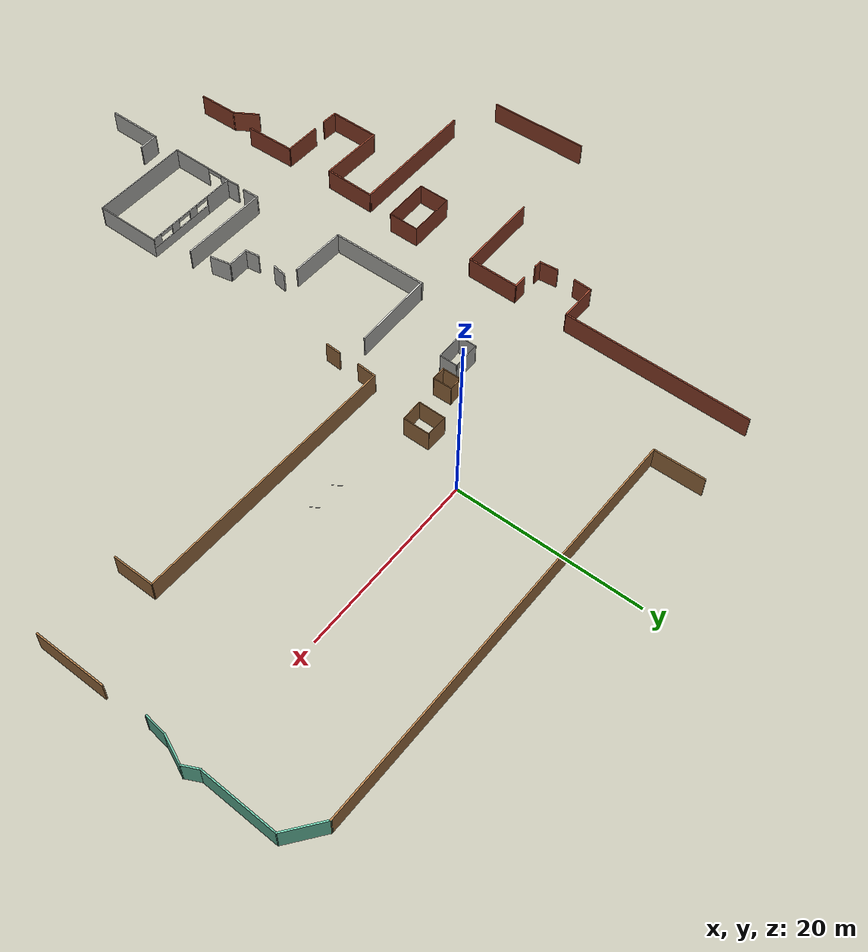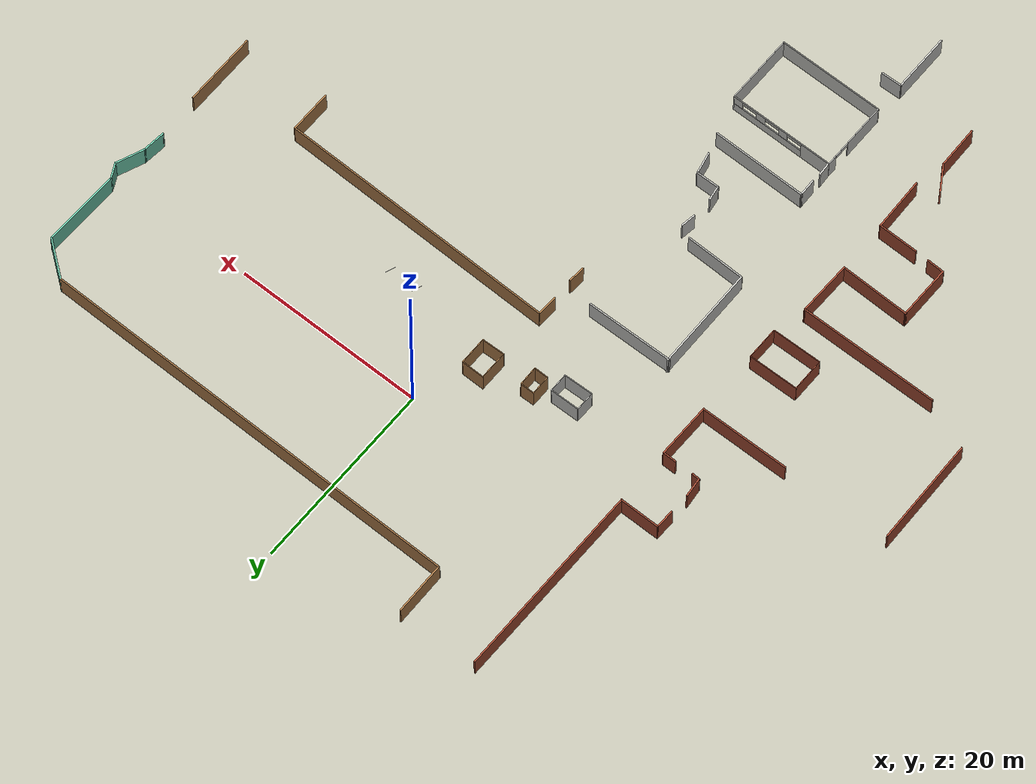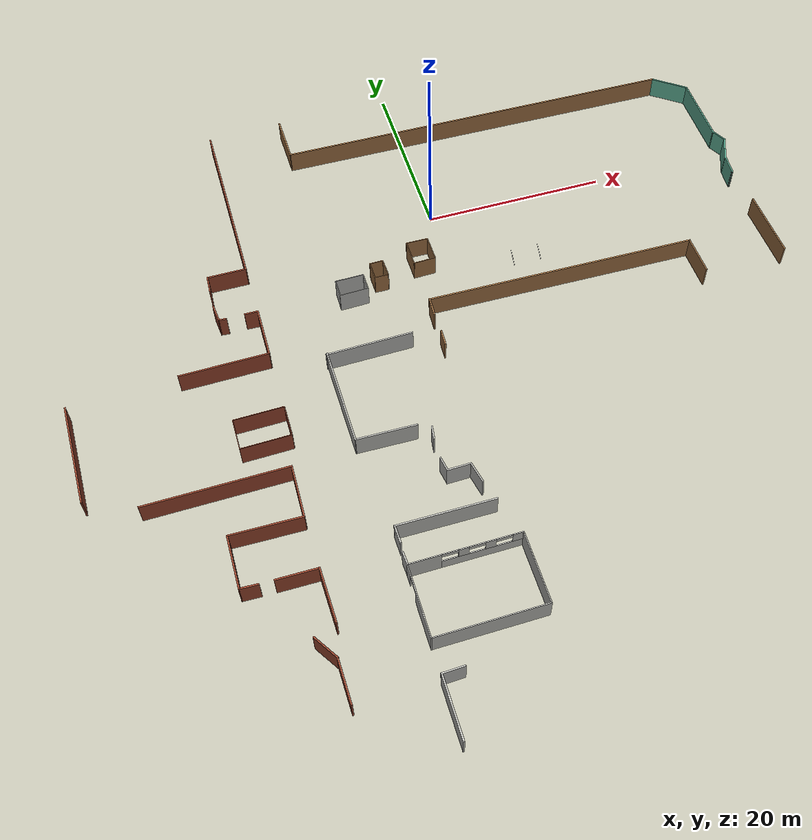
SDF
<sdf version="1.4">
 <world name="default">
  <model name="strut_0">
   <static>1</static>
   <pose>6.740 -8.623 0.536 -0.896 0.0 0.0</pose>
   <link name="link">
    <collision name="collision">
     <geometry><cylinder><length>1.76</length><radius>0.02</radius></cylinder></geometry>
    </collision>
    <visual name="visual">
     <geometry><cylinder><length>1.76</length><radius>0.02</radius></cylinder></geometry>
     <material>
      <script><uri>file://media/materials/scripts/gazebo.material</uri><name>Gazebo/Chrome</name></script>
      <shader type="vertex"><normal_map>__default__</normal_map></shader>
      <emissive>0.1 0.1 0.1 1</emissive>
      <specular>0.01 0.01 0.01 1</specular>
      <ambient>0.5 0.5 0.5 1</ambient>
      <diffuse>0.05 0.05 0.05 1</diffuse>
     </material>
    </visual>
   </link>
  </model>
  <model name="strut_1">
   <static>1</static>
   <pose>9.800 -8.623 0.536 -0.896 0.0 0.0</pose>
   <link name="link">
    <collision name="collision">
     <geometry><cylinder><length>1.76</length><radius>0.02</radius></cylinder></geometry>
    </collision>
    <visual name="visual">
     <geometry><cylinder><length>1.76</length><radius>0.02</radius></cylinder></geometry>
     <material>
      <script><uri>file://media/materials/scripts/gazebo.material</uri><name>Gazebo/Chrome</name></script>
      <shader type="vertex"><normal_map>__default__</normal_map></shader>
      <emissive>0.1 0.1 0.1 1</emissive>
      <specular>0.01 0.01 0.01 1</specular>
      <ambient>0.5 0.5 0.5 1</ambient>
      <diffuse>0.05 0.05 0.05 1</diffuse>
     </material>
    </visual>
   </link>
  </model>
  <model name="riseholme_enclosure_0">
   <static>1</static>
   <pose>-2.830 -19.680 0.0 0.0 0.0 0.056</pose>
   <link name="Wall_10">
    <collision name="Wall_10_Collision">
     <geometry><box><size>4.40408 0.15 2.5</size></box></geometry>
     <pose>0 0 1.25 0 -0 0</pose>
    </collision>
    <visual name="Wall_10_Visual">
     <geometry><box><size>4.40408 0.15 2.5</size></box></geometry>
     <meta><layer>0</layer></meta>
     <material>
      <script><uri>file://media/materials/scripts/gazebo.material</uri><name>Gazebo/Grey</name></script>
      <ambient>0.435294 0.796078 0.67451 1</ambient>
     </material>
     <pose>0 0 1.25 0 -0 0</pose>
    </visual>
    <pose>37.9809 28.2217 0 0 -0 -0.71569</pose>
   </link>
   <link name="Wall_100">
    <collision name="Wall_100_Collision">
     <geometry><box><size>1.38035 0.15 2.5</size></box></geometry>
     <pose>0 0 1.25 0 -0 0</pose>
    </collision>
    <visual name="Wall_100_Visual">
     <geometry><box><size>1.38035 0.15 2.5</size></box></geometry>
     <meta><layer>0</layer></meta>
     <material>
      <script><uri>file://media/materials/scripts/gazebo.material</uri><name>Gazebo/CeilingTiled</name></script>
      <ambient>1 1 1 1</ambient>
     </material>
     <pose>0 0 1.25 0 -0 0</pose>
    </visual>
    <pose>-13.3343 -20.6396 0 0 -0 -1.5708</pose>
   </link>
   <link name="Wall_102">
    <collision name="Wall_102_Collision">
     <geometry><box><size>5.25909 0.07 2.5</size></box></geometry>
     <pose>0 0 1.25 0 -0 0</pose>
    </collision>
    <visual name="Wall_102_Visual">
     <geometry><box><size>5.25909 0.07 2.5</size></box></geometry>
     <meta><layer>0</layer></meta>
     <material>
      <script><uri>file://media/materials/scripts/gazebo.material</uri><name>Gazebo/Bricks</name></script>
      <ambient>1 1 1 1</ambient>
     </material>
     <pose>0 0 1.25 0 -0 0</pose>
    </visual>
    <pose>-21.5336 -0.928753 0 0 -0 -0.039709</pose>
   </link>
   <link name="Wall_103">
    <collision name="Wall_103_Collision">
     <geometry><box><size>3.49121 0.07 2.5</size></box></geometry>
     <pose>0 0 1.25 0 -0 0</pose>
    </collision>
    <visual name="Wall_103_Visual">
     <geometry><box><size>3.49121 0.07 2.5</size></box></geometry>
     <meta><layer>0</layer></meta>
     <material>
      <script><uri>file://media/materials/scripts/gazebo.material</uri><name>Gazebo/Bricks</name></script>
      <ambient>1 1 1 1</ambient>
     </material>
     <pose>0 0 1.25 0 -0 0</pose>
    </visual>
    <pose>-19.0441 -2.73925 0 0 -0 -1.63105</pose>
   </link>
   <link name="Wall_104">
    <collision name="Wall_104_Collision">
     <geometry><box><size>5.24692 0.07 2.5</size></box></geometry>
     <pose>0 0 1.25 0 -0 0</pose>
    </collision>
    <visual name="Wall_104_Visual">
     <geometry><box><size>5.24692 0.07 2.5</size></box></geometry>
     <meta><layer>0</layer></meta>
     <material>
      <script><uri>file://media/materials/scripts/gazebo.material</uri><name>Gazebo/Bricks</name></script>
      <ambient>1 1 1 1</ambient>
     </material>
     <pose>0 0 1.25 0 -0 0</pose>
    </visual>
    <pose>-21.7333 -4.34992 0 0 -0 3.10417</pose>
   </link>
   <link name="Wall_105">
    <collision name="Wall_105_Collision">
     <geometry><box><size>3.49429 0.07 2.5</size></box></geometry>
     <pose>0 0 1.25 0 -0 0</pose>
    </collision>
    <visual name="Wall_105_Visual">
     <geometry><box><size>3.49429 0.07 2.5</size></box></geometry>
     <meta><layer>0</layer></meta>
     <material>
      <script><uri>file://media/materials/scripts/gazebo.material</uri><name>Gazebo/Bricks</name></script>
      <ambient>1 1 1 1</ambient>
     </material>
     <pose>0 0 1.25 0 -0 0</pose>
    </visual>
    <pose>-24.2229 -2.53786 0 0 -0 1.51436</pose>
   </link>
   <link name="Wall_11">
    <collision name="Wall_11_Collision">
     <geometry><box><size>8.22495 0.15 2.5</size></box></geometry>
     <pose>0 0 1.25 0 -0 0</pose>
    </collision>
    <visual name="Wall_11_Visual">
     <geometry><box><size>8.22495 0.15 2.5</size></box></geometry>
     <meta><layer>0</layer></meta>
     <material>
      <script><uri>file://media/materials/scripts/gazebo.material</uri><name>Gazebo/Grey</name></script>
      <ambient>0.435294 0.796078 0.67451 1</ambient>
     </material>
     <pose>0 0 1.25 0 -0 0</pose>
    </visual>
    <pose>39.2604 22.8017 0 0 -0 -1.6515</pose>
   </link>
   <link name="Wall_12">
    <collision name="Wall_12_Collision">
     <geometry><box><size>1.81774 0.15 2.5</size></box></geometry>
     <pose>0 0 1.25 0 -0 0</pose>
    </collision>
    <visual name="Wall_12_Visual">
     <geometry><box><size>1.81774 0.15 2.5</size></box></geometry>
     <meta><layer>0</layer></meta>
     <material>
      <script><uri>file://media/materials/scripts/gazebo.material</uri><name>Gazebo/Grey</name></script>
      <ambient>0.435294 0.796078 0.67451 1</ambient>
     </material>
     <pose>0 0 1.25 0 -0 0</pose>
    </visual>
    <pose>39.2604 18.0097 0 0 -0 -1.16969</pose>
   </link>
   <link name="Wall_13">
    <collision name="Wall_13_Collision">
     <geometry><box><size>3.14637 0.15 2.5</size></box></geometry>
     <pose>0 0 1.25 0 -0 0</pose>
    </collision>
    <visual name="Wall_13_Visual">
     <geometry><box><size>3.14637 0.15 2.5</size></box></geometry>
     <meta><layer>0</layer></meta>
     <material>
      <script><uri>file://media/materials/scripts/gazebo.material</uri><name>Gazebo/Grey</name></script>
      <ambient>0.435294 0.796078 0.67451 1</ambient>
     </material>
     <pose>0 0 1.25 0 -0 0</pose>
    </visual>
    <pose>38.9349 15.8932 0 0 -0 -2.02041</pose>
   </link>
   <link name="Wall_14">
    <collision name="Wall_14_Collision">
     <geometry><box><size>2.45986 0.15 2.5</size></box></geometry>
     <pose>0 0 1.25 0 -0 0</pose>
    </collision>
    <visual name="Wall_14_Visual">
     <geometry><box><size>2.45986 0.15 2.5</size></box></geometry>
     <meta><layer>0</layer></meta>
     <material>
      <script><uri>file://media/materials/scripts/gazebo.material</uri><name>Gazebo/Grey</name></script>
      <ambient>0.435294 0.796078 0.67451 1</ambient>
     </material>
     <pose>0 0 1.25 0 -0 0</pose>
    </visual>
    <pose>38.0974 13.4042 0 0 -0 -1.73296</pose>
   </link>
   <link name="Wall_15">
    <collision name="Wall_15_Collision">
     <geometry><box><size>0.16 0.15 2.5</size></box></geometry>
     <pose>0 0 1.25 0 -0 0</pose>
    </collision>
    <visual name="Wall_15_Visual">
     <geometry><box><size>0.16 0.15 2.5</size></box></geometry>
     <meta><layer>0</layer></meta>
     <material>
      <script><uri>file://media/materials/scripts/gazebo.material</uri><name>Gazebo/Grey</name></script>
      <ambient>1 1 1 1</ambient>
     </material>
     <pose>0 0 1.25 0 -0 0</pose>
    </visual>
    <pose>37.9161 12.2642 0 0 -0 -0.015821</pose>
   </link>
   <link name="Wall_17">
    <collision name="Wall_17_Collision">
     <geometry><box><size>7.7914 0.15 2.5</size></box></geometry>
     <pose>0 0 1.25 0 -0 0</pose>
    </collision>
    <visual name="Wall_17_Visual">
     <geometry><box><size>7.7914 0.15 2.5</size></box></geometry>
     <meta><layer>0</layer></meta>
     <material>
      <script><uri>file://media/materials/scripts/gazebo.material</uri><name>Gazebo/Wood</name></script>
      <ambient>1 1 1 1</ambient>
     </material>
     <pose>0 0 1.25 0 -0 0</pose>
    </visual>
    <pose>37.7484 3.75021 0 0 -0 -1.62562</pose>
   </link>
   <link name="Wall_19">
    <collision name="Wall_19_Collision">
     <geometry><box><size>4.48297 0.15 2.5</size></box></geometry>
     <pose>0 0 1.25 0 -0 0</pose>
    </collision>
    <visual name="Wall_19_Visual">
     <geometry><box><size>4.48297 0.15 2.5</size></box></geometry>
     <meta><layer>0</layer></meta>
     <material>
      <script><uri>file://media/materials/scripts/gazebo.material</uri><name>Gazebo/Wood</name></script>
      <ambient>1 1 1 1</ambient>
     </material>
     <pose>0 0 1.25 0 -0 0</pose>
    </visual>
    <pose>28.3339 2.41776 0 0 -0 1.51709</pose>
   </link>
   <link name="Wall_20">
    <collision name="Wall_20_Collision">
     <geometry><box><size>29.5845 0.15 2.5</size></box></geometry>
     <pose>0 0 1.25 0 -0 0</pose>
    </collision>
    <visual name="Wall_20_Visual">
     <geometry><box><size>29.5845 0.15 2.5</size></box></geometry>
     <meta><layer>0</layer></meta>
     <material>
      <script><uri>file://media/materials/scripts/gazebo.material</uri><name>Gazebo/Wood</name></script>
      <ambient>1 1 1 1</ambient>
     </material>
     <pose>0 0 1.25 0 -0 0</pose>
    </visual>
    <pose>13.7719 5.65117 0 0 -0 3.06882</pose>
   </link>
   <link name="Wall_21">
    <collision name="Wall_21_Collision">
     <geometry><box><size>2.21023 0.15 2.5</size></box></geometry>
     <pose>0 0 1.25 0 -0 0</pose>
    </collision>
    <visual name="Wall_21_Visual">
     <geometry><box><size>2.21023 0.15 2.5</size></box></geometry>
     <meta><layer>0</layer></meta>
     <material>
      <script><uri>file://media/materials/scripts/gazebo.material</uri><name>Gazebo/Wood</name></script>
      <ambient>1 1 1 1</ambient>
     </material>
     <pose>0 0 1.25 0 -0 0</pose>
    </visual>
    <pose>-1.02272 5.6977 0 0 -0 -1.68395</pose>
   </link>
   <link name="Wall_23">
    <collision name="Wall_23_Collision">
     <geometry><box><size>1.78894 0.15 2.5</size></box></geometry>
     <pose>0 0 1.25 0 -0 0</pose>
    </collision>
    <visual name="Wall_23_Visual">
     <geometry><box><size>1.78894 0.15 2.5</size></box></geometry>
     <meta><layer>0</layer></meta>
     <material>
      <script><uri>file://media/materials/scripts/gazebo.material</uri><name>Gazebo/Wood</name></script>
      <ambient>1 1 1 1</ambient>
     </material>
     <pose>0 0 1.25 0 -0 0</pose>
    </visual>
    <pose>-1.32513 1.53381 0 0 -0 -1.68459</pose>
   </link>
   <link name="Wall_25">
    <collision name="Wall_25_Collision">
     <geometry><box><size>9.22979 0.15 2.5</size></box></geometry>
     <pose>0 0 1.25 0 -0 0</pose>
    </collision>
    <visual name="Wall_25_Visual">
     <geometry><box><size>9.22979 0.15 2.5</size></box></geometry>
     <meta><layer>0</layer></meta>
     <material>
      <script><uri>file://media/materials/scripts/gazebo.material</uri><name>Gazebo/CeilingTiled</name></script>
      <ambient>1 1 1 1</ambient>
     </material>
     <pose>0 0 1.25 0 -0 0</pose>
    </visual>
    <pose>-8.65264 3.41803 0 0 -0 3.10059</pose>
   </link>
   <link name="Wall_28">
    <collision name="Wall_28_Collision">
     <geometry><box><size>20.7055 0.15 2.5</size></box></geometry>
     <pose>0 0 1.25 0 -0 0</pose>
    </collision>
    <visual name="Wall_28_Visual">
     <geometry><box><size>20.7055 0.15 2.5</size></box></geometry>
     <meta><layer>0</layer></meta>
     <material>
      <script><uri>file://media/materials/scripts/gazebo.material</uri><name>Gazebo/Bricks</name></script>
      <ambient>1 1 1 1</ambient>
     </material>
     <pose>0 0 1.25 0 -0 0</pose>
    </visual>
    <pose>-17.2596 27.7733 0 0 -0 -1.63194</pose>
   </link>
   <link name="Wall_29">
    <collision name="Wall_29_Collision">
     <geometry><box><size>4.29716 0.15 2.5</size></box></geometry>
     <pose>0 0 1.25 0 -0 0</pose>
    </collision>
    <visual name="Wall_29_Visual">
     <geometry><box><size>4.29716 0.15 2.5</size></box></geometry>
     <meta><layer>0</layer></meta>
     <material>
      <script><uri>file://media/materials/scripts/gazebo.material</uri><name>Gazebo/Bricks</name></script>
      <ambient>1 1 1 1</ambient>
     </material>
     <pose>0 0 1.25 0 -0 0</pose>
    </visual>
    <pose>-19.958 17.6311 0 0 -0 3.08547</pose>
   </link>
   <link name="Wall_30">
    <collision name="Wall_30_Collision">
     <geometry><box><size>2.06654 0.15 2.5</size></box></geometry>
     <pose>0 0 1.25 0 -0 0</pose>
    </collision>
    <visual name="Wall_30_Visual">
     <geometry><box><size>2.06654 0.15 2.5</size></box></geometry>
     <meta><layer>0</layer></meta>
     <material>
      <script><uri>file://media/materials/scripts/gazebo.material</uri><name>Gazebo/Bricks</name></script>
      <ambient>1 1 1 1</ambient>
     </material>
     <pose>0 0 1.25 0 -0 0</pose>
    </visual>
    <pose>-22.1213 16.7937 0 0 -0 -1.66805</pose>
   </link>
   <link name="Wall_32">
    <collision name="Wall_32_Collision">
     <geometry><box><size>2.10622 0.15 2.5</size></box></geometry>
     <pose>0 0 1.25 0 -0 0</pose>
    </collision>
    <visual name="Wall_32_Visual">
     <geometry><box><size>2.10622 0.15 2.5</size></box></geometry>
     <meta><layer>0</layer></meta>
     <material>
      <script><uri>file://media/materials/scripts/gazebo.material</uri><name>Gazebo/Bricks</name></script>
      <ambient>1 1 1 1</ambient>
     </material>
     <pose>0 0 1.25 0 -0 0</pose>
    </visual>
    <pose>-22.3539 12.7228 0 0 -0 -1.52321</pose>
   </link>
   <link name="Wall_33">
    <collision name="Wall_33_Collision">
     <geometry><box><size>0.900176 0.15 2.5</size></box></geometry>
     <pose>0 0 1.25 0 -0 0</pose>
    </collision>
    <visual name="Wall_33_Visual">
     <geometry><box><size>0.900176 0.15 2.5</size></box></geometry>
     <meta><layer>0</layer></meta>
     <material>
      <script><uri>file://media/materials/scripts/gazebo.material</uri><name>Gazebo/Bricks</name></script>
      <ambient>1 1 1 1</ambient>
     </material>
     <pose>0 0 1.25 0 -0 0</pose>
    </visual>
    <pose>-21.9352 11.6993 0 0 -0 -0.124355</pose>
   </link>
   <link name="Wall_35">
    <collision name="Wall_35_Collision">
     <geometry><box><size>1.5024 0.15 2.5</size></box></geometry>
     <pose>0 0 1.25 0 -0 0</pose>
    </collision>
    <visual name="Wall_35_Visual">
     <geometry><box><size>1.5024 0.15 2.5</size></box></geometry>
     <meta><layer>0</layer></meta>
     <material>
      <script><uri>file://media/materials/scripts/gazebo.material</uri><name>Gazebo/Bricks</name></script>
      <ambient>1 1 1 1</ambient>
     </material>
     <pose>0 0 1.25 0 -0 0</pose>
    </visual>
    <pose>-18.8879 11.5132 0 0 -0 -0.068856</pose>
   </link>
   <link name="Wall_36">
    <collision name="Wall_36_Collision">
     <geometry><box><size>5.83811 0.15 2.5</size></box></geometry>
     <pose>0 0 1.25 0 -0 0</pose>
    </collision>
    <visual name="Wall_36_Visual">
     <geometry><box><size>5.83811 0.15 2.5</size></box></geometry>
     <meta><layer>0</layer></meta>
     <material>
      <script><uri>file://media/materials/scripts/gazebo.material</uri><name>Gazebo/Bricks</name></script>
      <ambient>1 1 1 1</ambient>
     </material>
     <pose>0 0 1.25 0 -0 0</pose>
    </visual>
    <pose>-18.3994 8.6287 0 0 -0 -1.63628</pose>
   </link>
   <link name="Wall_44">
    <collision name="Wall_44_Collision">
     <geometry><box><size>1.5575 0.07 2.5</size></box></geometry>
     <pose>0 0 1.25 0 -0 0</pose>
    </collision>
    <visual name="Wall_44_Visual">
     <geometry><box><size>1.5575 0.07 2.5</size></box></geometry>
     <meta><layer>0</layer></meta>
     <material>
      <script><uri>file://media/materials/scripts/gazebo.material</uri><name>Gazebo/Wood</name></script>
      <ambient>1 1 1 1</ambient>
     </material>
     <pose>0 0 1.25 0 -0 0</pose>
    </visual>
    <pose>-4.6011 11.5102 0 0 -0 -0.068625</pose>
   </link>
   <link name="Wall_48">
    <collision name="Wall_48_Collision">
     <geometry><box><size>2.1141 0.07 2.5</size></box></geometry>
     <pose>0 0 1.25 0 -0 0</pose>
    </collision>
    <visual name="Wall_48_Visual">
     <geometry><box><size>2.1141 0.07 2.5</size></box></geometry>
     <meta><layer>0</layer></meta>
     <material>
      <script><uri>file://media/materials/scripts/gazebo.material</uri><name>Gazebo/Wood</name></script>
      <ambient>1 1 1 1</ambient>
     </material>
     <pose>0 0 1.25 0 -0 0</pose>
    </visual>
    <pose>-3.8286 12.4807 0 0 -0 1.54095</pose>
   </link>
   <link name="Wall_49">
    <collision name="Wall_49_Collision">
     <geometry><box><size>1.51805 0.07 2.5</size></box></geometry>
     <pose>0 0 1.25 0 -0 0</pose>
    </collision>
    <visual name="Wall_49_Visual">
     <geometry><box><size>1.51805 0.07 2.5</size></box></geometry>
     <meta><layer>0</layer></meta>
     <material>
      <script><uri>file://media/materials/scripts/gazebo.material</uri><name>Gazebo/Wood</name></script>
      <ambient>1 1 1 1</ambient>
     </material>
     <pose>0 0 1.25 0 -0 0</pose>
    </visual>
    <pose>-4.52166 13.5281 0 0 -0 3.10583</pose>
   </link>
   <link name="Wall_5">
    <collision name="Wall_5_Collision">
     <geometry><box><size>5.55178 0.15 2.5</size></box></geometry>
     <pose>0 0 1.25 0 -0 0</pose>
    </collision>
    <visual name="Wall_5_Visual">
     <geometry><box><size>5.55178 0.15 2.5</size></box></geometry>
     <meta><layer>0</layer></meta>
     <material>
      <script><uri>file://media/materials/scripts/gazebo.material</uri><name>Gazebo/Wood</name></script>
      <ambient>1 1 1 1</ambient>
     </material>
     <pose>0 0 1.25 0 -0 0</pose>
    </visual>
    <pose>-8.44986 35.2004 0 0 -0 -1.61387</pose>
   </link>
   <link name="Wall_56">
    <collision name="Wall_56_Collision">
     <geometry><box><size>3.10664 0.07 2.5</size></box></geometry>
     <pose>0 0 1.25 0 -0 0</pose>
    </collision>
    <visual name="Wall_56_Visual">
     <geometry><box><size>3.10664 0.07 2.5</size></box></geometry>
     <meta><layer>0</layer></meta>
     <material>
      <script><uri>file://media/materials/scripts/gazebo.material</uri><name>Gazebo/CeilingTiled</name></script>
      <ambient>1 1 1 1</ambient>
     </material>
     <pose>0 0 1.25 0 -0 0</pose>
    </visual>
    <pose>-7.90402 12.4344 0 0 -0 -0.042937</pose>
   </link>
   <link name="Wall_57">
    <collision name="Wall_57_Collision">
     <geometry><box><size>2.00785 0.07 2.5</size></box></geometry>
     <pose>0 0 1.25 0 -0 0</pose>
    </collision>
    <visual name="Wall_57_Visual">
     <geometry><box><size>2.00785 0.07 2.5</size></box></geometry>
     <meta><layer>0</layer></meta>
     <material>
      <script><uri>file://media/materials/scripts/gazebo.material</uri><name>Gazebo/CeilingTiled</name></script>
      <ambient>1 1 1 1</ambient>
     </material>
     <pose>0 0 1.25 0 -0 0</pose>
    </visual>
    <pose>-6.4376 11.4016 0 0 -0 -1.62294</pose>
   </link>
   <link name="Wall_58">
    <collision name="Wall_58_Collision">
     <geometry><box><size>3.12574 0.07 2.5</size></box></geometry>
     <pose>0 0 1.25 0 -0 0</pose>
    </collision>
    <visual name="Wall_58_Visual">
     <geometry><box><size>3.12574 0.07 2.5</size></box></geometry>
     <meta><layer>0</layer></meta>
     <material>
      <script><uri>file://media/materials/scripts/gazebo.material</uri><name>Gazebo/CeilingTiled</name></script>
      <ambient>1 1 1 1</ambient>
     </material>
     <pose>0 0 1.25 0 -0 0</pose>
    </visual>
    <pose>-8.0156 10.4711 0 0 -0 3.11541</pose>
   </link>
   <link name="Wall_59">
    <collision name="Wall_59_Collision">
     <geometry><box><size>2.06504 0.07 2.5</size></box></geometry>
     <pose>0 0 1.25 0 -0 0</pose>
    </collision>
    <visual name="Wall_59_Visual">
     <geometry><box><size>2.06504 0.07 2.5</size></box></geometry>
     <meta><layer>0</layer></meta>
     <material>
      <script><uri>file://media/materials/scripts/gazebo.material</uri><name>Gazebo/CeilingTiled</name></script>
      <ambient>1 1 1 1</ambient>
     </material>
     <pose>0 0 1.25 0 -0 0</pose>
    </visual>
    <pose>-9.48241 11.5097 0 0 -0 1.50992</pose>
   </link>
   <link name="Wall_6">
    <collision name="Wall_6_Collision">
     <geometry><box><size>45.1846 0.15 2.5</size></box></geometry>
     <pose>0 0 1.25 0 -0 0</pose>
    </collision>
    <visual name="Wall_6_Visual">
     <geometry><box><size>45.1846 0.15 2.5</size></box></geometry>
     <meta><layer>0</layer></meta>
     <material>
      <script><uri>file://media/materials/scripts/gazebo.material</uri><name>Gazebo/Wood</name></script>
      <ambient>1 1 1 1</ambient>
     </material>
     <pose>0 0 1.25 0 -0 0</pose>
    </visual>
    <pose>13.9049 31.0596 0 0 -0 -0.0641</pose>
   </link>
   <link name="Wall_61">
    <collision name="Wall_61_Collision">
     <geometry><box><size>2.44653 0.07 2.5</size></box></geometry>
     <pose>0 0 1.25 0 -0 0</pose>
    </collision>
    <visual name="Wall_61_Visual">
     <geometry><box><size>2.44653 0.07 2.5</size></box></geometry>
     <meta><layer>0</layer></meta>
     <material>
      <script><uri>file://media/materials/scripts/gazebo.material</uri><name>Gazebo/Wood</name></script>
      <ambient>1 1 1 1</ambient>
     </material>
     <pose>0 0 1.25 0 -0 0</pose>
    </visual>
    <pose>0.595403 14.8812 0 0 -0 -0.06822</pose>
   </link>
   <link name="Wall_62">
    <collision name="Wall_62_Collision">
     <geometry><box><size>2.9539 0.07 2.5</size></box></geometry>
     <pose>0 0 1.25 0 -0 0</pose>
    </collision>
    <visual name="Wall_62_Visual">
     <geometry><box><size>2.9539 0.07 2.5</size></box></geometry>
     <meta><layer>0</layer></meta>
     <material>
      <script><uri>file://media/materials/scripts/gazebo.material</uri><name>Gazebo/Wood</name></script>
      <ambient>1 1 1 1</ambient>
     </material>
     <pose>0 0 1.25 0 -0 0</pose>
    </visual>
    <pose>1.7059 13.3602 0 0 -0 -1.62283</pose>
   </link>
   <link name="Wall_63">
    <collision name="Wall_63_Collision">
     <geometry><box><size>2.45355 0.07 2.5</size></box></geometry>
     <pose>0 0 1.25 0 -0 0</pose>
    </collision>
    <visual name="Wall_63_Visual">
     <geometry><box><size>2.45355 0.07 2.5</size></box></geometry>
     <meta><layer>0</layer></meta>
     <material>
      <script><uri>file://media/materials/scripts/gazebo.material</uri><name>Gazebo/Wood</name></script>
      <ambient>1 1 1 1</ambient>
     </material>
     <pose>0 0 1.25 0 -0 0</pose>
    </visual>
    <pose>0.439403 11.9547 0 0 -0 3.11265</pose>
   </link>
   <link name="Wall_64">
    <collision name="Wall_64_Collision">
     <geometry><box><size>3.04759 0.07 2.5</size></box></geometry>
     <pose>0 0 1.25 0 -0 0</pose>
    </collision>
    <visual name="Wall_64_Visual">
     <geometry><box><size>3.04759 0.07 2.5</size></box></geometry>
     <meta><layer>0</layer></meta>
     <material>
      <script><uri>file://media/materials/scripts/gazebo.material</uri><name>Gazebo/Wood</name></script>
      <ambient>1 1 1 1</ambient>
     </material>
     <pose>0 0 1.25 0 -0 0</pose>
    </visual>
    <pose>-0.665097 13.4757 0 0 -0 1.51234</pose>
   </link>
   <link name="Wall_66">
    <collision name="Wall_66_Collision">
     <geometry><box><size>2.06517 0.07 2.5</size></box></geometry>
     <pose>0 0 1.25 0 -0 0</pose>
    </collision>
    <visual name="Wall_66_Visual">
     <geometry><box><size>2.06517 0.07 2.5</size></box></geometry>
     <meta><layer>0</layer></meta>
     <material>
      <script><uri>file://media/materials/scripts/gazebo.material</uri><name>Gazebo/Wood</name></script>
      <ambient>1 1 1 1</ambient>
     </material>
     <pose>0 0 1.25 0 -0 0</pose>
    </visual>
    <pose>-5.29416 12.5576 0 0 -0 1.52172</pose>
   </link>
   <link name="Wall_68">
    <collision name="Wall_68_Collision">
     <geometry><box><size>9.43343 0.15 2.5</size></box></geometry>
     <pose>0 0 1.25 0 -0 0</pose>
    </collision>
    <visual name="Wall_68_Visual">
     <geometry><box><size>9.43343 0.15 2.5</size></box></geometry>
     <meta><layer>0</layer></meta>
     <material>
      <script><uri>file://media/materials/scripts/gazebo.material</uri><name>Gazebo/Bricks</name></script>
      <ambient>1 1 1 1</ambient>
     </material>
     <pose>0 0 1.25 0 -0 0</pose>
    </visual>
    <pose>-23.2225 6.00059 0 0 -0 3.09637</pose>
   </link>
   <link name="Wall_70">
    <collision name="Wall_70_Collision">
     <geometry><box><size>11.2057 0.15 2.5</size></box></geometry>
     <pose>0 0 1.25 0 -0 0</pose>
    </collision>
    <visual name="Wall_70_Visual">
     <geometry><box><size>11.2057 0.15 2.5</size></box></geometry>
     <meta><layer>0</layer></meta>
     <material>
      <script><uri>file://media/materials/scripts/gazebo.material</uri><name>Gazebo/Bricks</name></script>
      <ambient>1 1 1 1</ambient>
     </material>
     <pose>0 0 1.25 0 -0 0</pose>
    </visual>
    <pose>-39.3963 0.795734 0 0 -0 -1.61018</pose>
   </link>
   <link name="Wall_72">
    <collision name="Wall_72_Collision">
     <geometry><box><size>14.6971 0.15 2.5</size></box></geometry>
     <pose>0 0 1.25 0 -0 0</pose>
    </collision>
    <visual name="Wall_72_Visual">
     <geometry><box><size>14.6971 0.15 2.5</size></box></geometry>
     <meta><layer>0</layer></meta>
     <material>
      <script><uri>file://media/materials/scripts/gazebo.material</uri><name>Gazebo/Bricks</name></script>
      <ambient>1 1 1 1</ambient>
     </material>
     <pose>0 0 1.25 0 -0 0</pose>
    </visual>
    <pose>-27.4513 -7.47598 0 0 -0 -0.048651</pose>
   </link>
   <link name="Wall_73">
    <collision name="Wall_73_Collision">
     <geometry><box><size>5.77205 0.15 2.5</size></box></geometry>
     <pose>0 0 1.25 0 -0 0</pose>
    </collision>
    <visual name="Wall_73_Visual">
     <geometry><box><size>5.77205 0.15 2.5</size></box></geometry>
     <meta><layer>0</layer></meta>
     <material>
      <script><uri>file://media/materials/scripts/gazebo.material</uri><name>Gazebo/Bricks</name></script>
      <ambient>1 1 1 1</ambient>
     </material>
     <pose>0 0 1.25 0 -0 0</pose>
    </visual>
    <pose>-20.404 -10.6323 0 0 -0 -1.64831</pose>
   </link>
   <link name="Wall_74">
    <collision name="Wall_74_Collision">
     <geometry><box><size>7.35391 0.15 2.5</size></box></geometry>
     <pose>0 0 1.25 0 -0 0</pose>
    </collision>
    <visual name="Wall_74_Visual">
     <geometry><box><size>7.35391 0.15 2.5</size></box></geometry>
     <meta><layer>0</layer></meta>
     <material>
      <script><uri>file://media/materials/scripts/gazebo.material</uri><name>Gazebo/Bricks</name></script>
      <ambient>1 1 1 1</ambient>
     </material>
     <pose>0 0 1.25 0 -0 0</pose>
    </visual>
    <pose>-24.2134 -13.1628 0 0 -0 3.06598</pose>
   </link>
   <link name="Wall_75">
    <collision name="Wall_75_Collision">
     <geometry><box><size>5.65602 0.15 2.5</size></box></geometry>
     <pose>0 0 1.25 0 -0 0</pose>
    </collision>
    <visual name="Wall_75_Visual">
     <geometry><box><size>5.65602 0.15 2.5</size></box></geometry>
     <meta><layer>0</layer></meta>
     <material>
      <script><uri>file://media/materials/scripts/gazebo.material</uri><name>Gazebo/Bricks</name></script>
      <ambient>1 1 1 1</ambient>
     </material>
     <pose>0 0 1.25 0 -0 0</pose>
    </visual>
    <pose>-27.9683 -15.6388 0 0 -0 -1.63013</pose>
   </link>
   <link name="Wall_76">
    <collision name="Wall_76_Collision">
     <geometry><box><size>1.89905 0.15 2.5</size></box></geometry>
     <pose>0 0 1.25 0 -0 0</pose>
    </collision>
    <visual name="Wall_76_Visual">
     <geometry><box><size>1.89905 0.15 2.5</size></box></geometry>
     <meta><layer>0</layer></meta>
     <material>
      <script><uri>file://media/materials/scripts/gazebo.material</uri><name>Gazebo/Bricks</name></script>
      <ambient>1 1 1 1</ambient>
     </material>
     <pose>0 0 1.25 0 -0 0</pose>
    </visual>
    <pose>-27.2608 -18.4686 0 0 -0 -0.093477</pose>
   </link>
   <link name="Wall_78">
    <collision name="Wall_78_Collision">
     <geometry><box><size>4.2405 0.15 2.5</size></box></geometry>
     <pose>0 0 1.25 0 -0 0</pose>
    </collision>
    <visual name="Wall_78_Visual">
     <geometry><box><size>4.2405 0.15 2.5</size></box></geometry>
     <meta><layer>0</layer></meta>
     <material>
      <script><uri>file://media/materials/scripts/gazebo.material</uri><name>Gazebo/Bricks</name></script>
      <ambient>1 1 1 1</ambient>
     </material>
     <pose>0 0 1.25 0 -0 0</pose>
    </visual>
    <pose>-22.8801 -18.7952 0 0 -0 -0.066568</pose>
   </link>
   <link name="Wall_79">
    <collision name="Wall_79_Collision">
     <geometry><box><size>5.64876 0.15 2.5</size></box></geometry>
     <pose>0 0 1.25 0 -0 0</pose>
    </collision>
    <visual name="Wall_79_Visual">
     <geometry><box><size>5.64876 0.15 2.5</size></box></geometry>
     <meta><layer>0</layer></meta>
     <material>
      <script><uri>file://media/materials/scripts/gazebo.material</uri><name>Gazebo/Bricks</name></script>
      <ambient>1 1 1 1</ambient>
     </material>
     <pose>0 0 1.25 0 -0 0</pose>
    </visual>
    <pose>-20.921 -21.6794 0 0 -0 -1.60049</pose>
   </link>
   <link name="Wall_81">
    <collision name="Wall_81_Collision">
     <geometry><box><size>2.9514 0.15 2.5</size></box></geometry>
     <pose>0 0 1.25 0 -0 0</pose>
    </collision>
    <visual name="Wall_81_Visual">
     <geometry><box><size>2.9514 0.15 2.5</size></box></geometry>
     <meta><layer>0</layer></meta>
     <material>
      <script><uri>file://media/materials/scripts/gazebo.material</uri><name>Gazebo/Bricks</name></script>
      <ambient>1 1 1 1</ambient>
     </material>
     <pose>0 0 1.25 0 -0 0</pose>
    </visual>
    <pose>-22.5536 -26.305 0 0 -0 -1.0637</pose>
   </link>
   <link name="Wall_82">
    <collision name="Wall_82_Collision">
     <geometry><box><size>4.50659 0.15 2.5</size></box></geometry>
     <pose>0 0 1.25 0 -0 0</pose>
    </collision>
    <visual name="Wall_82_Visual">
     <geometry><box><size>4.50659 0.15 2.5</size></box></geometry>
     <meta><layer>0</layer></meta>
     <material>
      <script><uri>file://media/materials/scripts/gazebo.material</uri><name>Gazebo/Bricks</name></script>
      <ambient>1 1 1 1</ambient>
     </material>
     <pose>0 0 1.25 0 -0 0</pose>
    </visual>
    <pose>-21.955 -29.7062 0 0 -0 -1.60828</pose>
   </link>
   <link name="Wall_84">
    <collision name="Wall_84_Collision">
     <geometry><box><size>6.19934 0.15 2.5</size></box></geometry>
     <pose>0 0 1.25 0 -0 0</pose>
    </collision>
    <visual name="Wall_84_Visual">
     <geometry><box><size>6.19934 0.15 2.5</size></box></geometry>
     <meta><layer>0</layer></meta>
     <material>
      <script><uri>file://media/materials/scripts/gazebo.material</uri><name>Gazebo/CeilingTiled</name></script>
      <ambient>1 1 1 1</ambient>
     </material>
     <pose>0 0 1.25 0 -0 0</pose>
    </visual>
    <pose>-14.2002 -35.0121 0 0 -0 1.51679</pose>
   </link>
   <link name="Wall_85">
    <collision name="Wall_85_Collision">
     <geometry><box><size>2.27304 0.15 2.5</size></box></geometry>
     <pose>0 0 1.25 0 -0 0</pose>
    </collision>
    <visual name="Wall_85_Visual">
     <geometry><box><size>2.27304 0.15 2.5</size></box></geometry>
     <meta><layer>0</layer></meta>
     <material>
      <script><uri>file://media/materials/scripts/gazebo.material</uri><name>Gazebo/CeilingTiled</name></script>
      <ambient>1 1 1 1</ambient>
     </material>
     <pose>0 0 1.25 0 -0 0</pose>
    </visual>
    <pose>-12.9758 -32.019 0 0 -0 -0.025635</pose>
   </link>
   <link name="Wall_87">
    <collision name="Wall_87_Collision">
     <geometry><box><size>10.9517 0.15 2.5</size></box></geometry>
     <pose>0 0 1.25 0 -0 0</pose>
    </collision>
    <visual name="Wall_87_Visual">
     <geometry><box><size>10.9517 0.15 2.5</size></box></geometry>
     <meta><layer>0</layer></meta>
     <material>
      <script><uri>file://media/materials/scripts/gazebo.material</uri><name>Gazebo/CeilingTiled</name></script>
      <ambient>1 1 1 1</ambient>
     </material>
     <pose>0 0 1.25 0 -0 0</pose>
    </visual>
    <pose>-13.358 -1.71119 0 0 -0 -1.61901</pose>
   </link>
   <link name="Wall_88">
    <collision name="Wall_88_Collision">
     <geometry><box><size>6.3199 0.15 2.5</size></box></geometry>
     <pose>0 0 1.25 0 -0 0</pose>
    </collision>
    <visual name="Wall_88_Visual">
     <geometry><box><size>6.3199 0.15 2.5</size></box></geometry>
     <meta><layer>0</layer></meta>
     <material>
      <script><uri>file://media/materials/scripts/gazebo.material</uri><name>Gazebo/CeilingTiled</name></script>
      <ambient>1 1 1 1</ambient>
     </material>
     <pose>0 0 1.25 0 -0 0</pose>
    </visual>
    <pose>-10.5424 -7.34239 0 0 -0 -0.076772</pose>
   </link>
   <link name="Wall_90">
    <collision name="Wall_90_Collision">
     <geometry><box><size>1.55137 0.15 2.5</size></box></geometry>
     <pose>0 0 1.25 0 -0 0</pose>
    </collision>
    <visual name="Wall_90_Visual">
     <geometry><box><size>1.55137 0.15 2.5</size></box></geometry>
     <meta><layer>0</layer></meta>
     <material>
      <script><uri>file://media/materials/scripts/gazebo.material</uri><name>Gazebo/CeilingTiled</name></script>
      <ambient>1 1 1 1</ambient>
     </material>
     <pose>0 0 1.25 0 -0 0</pose>
    </visual>
    <pose>-6.33083 -8.97496 0 0 -0 -1.77481</pose>
   </link>
   <link name="Wall_92">
    <collision name="Wall_92_Collision">
     <geometry><box><size>1.57671 0.15 2.5</size></box></geometry>
     <pose>0 0 1.25 0 -0 0</pose>
    </collision>
    <visual name="Wall_92_Visual">
     <geometry><box><size>1.57671 0.15 2.5</size></box></geometry>
     <meta><layer>0</layer></meta>
     <material>
      <script><uri>file://media/materials/scripts/gazebo.material</uri><name>Gazebo/CeilingTiled</name></script>
      <ambient>1 1 1 1</ambient>
     </material>
     <pose>0 0 1.25 0 -0 0</pose>
    </visual>
    <pose>-6.59109 -12.6423 0 0 -0 -1.47113</pose>
   </link>
   <link name="Wall_94">
    <collision name="Wall_94_Collision">
     <geometry><box><size>2.51794 0.15 2.5</size></box></geometry>
     <pose>0 0 1.25 0 -0 0</pose>
    </collision>
    <visual name="Wall_94_Visual">
     <geometry><box><size>2.51794 0.15 2.5</size></box></geometry>
     <meta><layer>0</layer></meta>
     <material>
      <script><uri>file://media/materials/scripts/gazebo.material</uri><name>Gazebo/CeilingTiled</name></script>
      <ambient>1 1 1 1</ambient>
     </material>
     <pose>0 0 1.25 0 -0 0</pose>
    </visual>
    <pose>-5.33709 -13.4468 0 0 -0 -0.039979</pose>
   </link>
   <link name="Wall_95">
    <collision name="Wall_95_Collision">
     <geometry><box><size>2.39862 0.15 2.5</size></box></geometry>
     <pose>0 0 1.25 0 -0 0</pose>
    </collision>
    <visual name="Wall_95_Visual">
     <geometry><box><size>2.39862 0.15 2.5</size></box></geometry>
     <meta><layer>0</layer></meta>
     <material>
      <script><uri>file://media/materials/scripts/gazebo.material</uri><name>Gazebo/CeilingTiled</name></script>
      <ambient>1 1 1 1</ambient>
     </material>
     <pose>0 0 1.25 0 -0 0</pose>
    </visual>
    <pose>-3.98844 -14.6062 0 0 -0 -1.42295</pose>
   </link>
   <link name="Wall_97">
    <collision name="Wall_97_Collision">
     <geometry><box><size>10.0592 0.15 2.5</size></box></geometry>
     <pose>0 0 1.25 0 -0 0</pose>
    </collision>
    <visual name="Wall_97_Visual">
     <geometry><box><size>10.0592 0.15 2.5</size></box></geometry>
     <meta><layer>0</layer></meta>
     <material>
      <script><uri>file://media/materials/scripts/gazebo.material</uri><name>Gazebo/CeilingTiled</name></script>
      <ambient>1 1 1 1</ambient>
     </material>
     <pose>0 0 1.25 0 -0 0</pose>
    </visual>
    <pose>-8.20001 -17.5874 0 0 -0 3.07947</pose>
   </link>
   <link name="Wall_98">
    <collision name="Wall_98_Collision">
     <geometry><box><size>1.90152 0.15 2.5</size></box></geometry>
     <pose>0 0 1.25 0 -0 0</pose>
    </collision>
    <visual name="Wall_98_Visual">
     <geometry><box><size>1.90152 0.15 2.5</size></box></geometry>
     <meta><layer>0</layer></meta>
     <material>
      <script><uri>file://media/materials/scripts/gazebo.material</uri><name>Gazebo/CeilingTiled</name></script>
      <ambient>1 1 1 1</ambient>
     </material>
     <pose>0 0 1.25 0 -0 0</pose>
    </visual>
    <pose>-13.1687 -18.1552 0 0 -0 -1.59782</pose>
   </link>
  </model>
  <model name="lab_0">
   <static>1</static>
   <pose>-9.438 -45.426 0.0 0.0 0.0 0.000</pose>
   <link name="Wall_23">
    <collision name="Wall_23_Collision_0">
     <geometry><box><size>3.29217 0.1 2.5</size></box></geometry>
     <pose>-3.95366 0 1.25 0 -0 0</pose>
    </collision>
    <collision name="Wall_23_Collision_1">
     <geometry><box><size>7.90733 0.1 1.25</size></box></geometry>
     <pose>1.64609 0 0.625 0 -0 0</pose>
    </collision>
    <collision name="Wall_23_Collision_2">
     <geometry><box><size>1.00872 0.1 1.25</size></box></geometry>
     <pose>-0.203222 0 1.875 0 -0 0</pose>
    </collision>
    <collision name="Wall_23_Collision_3">
     <geometry><box><size>1.00886 0.1 1.25</size></box></geometry>
     <pose>2.40557 0 1.875 0 -0 0</pose>
    </collision>
    <collision name="Wall_23_Collision_4">
     <geometry><box><size>1.08975 0.1 1.25</size></box></geometry>
     <pose>5.05488 0 1.875 0 -0 0</pose>
    </collision>
    <collision name="Wall_23_Collision_5">
     <geometry><box><size>1.6 0.1 0.45</size></box></geometry>
     <pose>-1.50758 0 2.275 0 -0 0</pose>
    </collision>
    <collision name="Wall_23_Collision_6">
     <geometry><box><size>1.6 0.1 0.45</size></box></geometry>
     <pose>1.10114 0 2.275 0 -0 0</pose>
    </collision>
    <collision name="Wall_23_Collision_7">
     <geometry><box><size>1.6 0.1 0.45</size></box></geometry>
     <pose>3.71 0 2.275 0 -0 0</pose>
    </collision>
    <visual name="Wall_23_Visual_0">
     <geometry><box><size>3.29217 0.1 2.5</size></box></geometry>
     <meta><layer>0</layer></meta>
     <material>
      <script><uri>file://media/materials/scripts/gazebo.material</uri><name>Gazebo/CeilingTiled</name></script>
      <ambient>0.760784 0.662745 0.627451 1</ambient>
     </material>
     <pose>-3.95366 0 1.25 0 -0 0</pose>
    </visual>
    <visual name="Wall_23_Visual_1">
     <geometry><box><size>7.90733 0.1 1.25</size></box></geometry>
     <meta><layer>0</layer></meta>
     <material>
      <script><uri>file://media/materials/scripts/gazebo.material</uri><name>Gazebo/CeilingTiled</name></script>
      <ambient>0.760784 0.662745 0.627451 1</ambient>
     </material>
     <pose>1.64609 0 0.625 0 -0 0</pose>
    </visual>
    <visual name="Wall_23_Visual_2">
     <geometry><box><size>1.00872 0.1 1.25</size></box></geometry>
     <meta><layer>0</layer></meta>
     <material>
      <script><uri>file://media/materials/scripts/gazebo.material</uri><name>Gazebo/CeilingTiled</name></script>
      <ambient>0.760784 0.662745 0.627451 1</ambient>
     </material>
     <pose>-0.203222 0 1.875 0 -0 0</pose>
    </visual>
    <visual name="Wall_23_Visual_3">
     <geometry><box><size>1.00886 0.1 1.25</size></box></geometry>
     <meta><layer>0</layer></meta>
     <material>
      <script><uri>file://media/materials/scripts/gazebo.material</uri><name>Gazebo/CeilingTiled</name></script>
      <ambient>0.760784 0.662745 0.627451 1</ambient>
     </material>
     <pose>2.40557 0 1.875 0 -0 0</pose>
    </visual>
    <visual name="Wall_23_Visual_4">
     <geometry><box><size>1.08975 0.1 1.25</size></box></geometry>
     <meta><layer>0</layer></meta>
     <material>
      <script><uri>file://media/materials/scripts/gazebo.material</uri><name>Gazebo/CeilingTiled</name></script>
      <ambient>0.760784 0.662745 0.627451 1</ambient>
     </material>
     <pose>5.05488 0 1.875 0 -0 0</pose>
    </visual>
    <visual name="Wall_23_Visual_5">
     <geometry><box><size>1.6 0.1 0.45</size></box></geometry>
     <meta><layer>0</layer></meta>
     <material>
      <script><uri>file://media/materials/scripts/gazebo.material</uri><name>Gazebo/CeilingTiled</name></script>
      <ambient>0.760784 0.662745 0.627451 1</ambient>
     </material>
     <pose>-1.50758 0 2.275 0 -0 0</pose>
    </visual>
    <visual name="Wall_23_Visual_6">
     <geometry><box><size>1.6 0.1 0.45</size></box></geometry>
     <meta><layer>0</layer></meta>
     <material>
      <script><uri>file://media/materials/scripts/gazebo.material</uri><name>Gazebo/CeilingTiled</name></script>
      <ambient>0.760784 0.662745 0.627451 1</ambient>
     </material>
     <pose>1.10114 0 2.275 0 -0 0</pose>
    </visual>
    <visual name="Wall_23_Visual_7">
     <geometry><box><size>1.6 0.1 0.45</size></box></geometry>
     <meta><layer>0</layer></meta>
     <material>
      <script><uri>file://media/materials/scripts/gazebo.material</uri><name>Gazebo/CeilingTiled</name></script>
      <ambient>0.760784 0.662745 0.627451 1</ambient>
     </material>
     <pose>3.71 0 2.275 0 -0 0</pose>
    </visual>
    <pose>0 3.675 0 0 -0 0</pose>
   </link>
   <link name="Wall_24">
    <collision name="Wall_24_Collision">
     <geometry><box><size>7.45 0.1 2.5</size></box></geometry>
     <pose>0 0 1.25 0 -0 0</pose>
    </collision>
    <visual name="Wall_24_Visual">
     <geometry><box><size>7.45 0.1 2.5</size></box></geometry>
     <meta><layer>0</layer></meta>
     <material>
      <script><uri>file://media/materials/scripts/gazebo.material</uri><name>Gazebo/CeilingTiled</name></script>
      <ambient>0.760784 0.662745 0.627451 1</ambient>
     </material>
     <pose>0 0 1.25 0 -0 0</pose>
    </visual>
    <pose>5.55 -0 0 0 -0 -1.5708</pose>
   </link>
   <link name="Wall_25">
    <collision name="Wall_25_Collision">
     <geometry><box><size>11.2005 0.1 2.5</size></box></geometry>
     <pose>0 0 1.25 0 -0 0</pose>
    </collision>
    <visual name="Wall_25_Visual">
     <geometry><box><size>11.2005 0.1 2.5</size></box></geometry>
     <meta><layer>0</layer></meta>
     <material>
      <script><uri>file://media/materials/scripts/gazebo.material</uri><name>Gazebo/CeilingTiled</name></script>
      <ambient>0.760784 0.662745 0.627451 1</ambient>
     </material>
     <pose>0 0 1.25 0 -0 0</pose>
    </visual>
    <pose>0 -3.675 0 0 -0 3.14159</pose>
   </link>
   <link name="Wall_26">
    <collision name="Wall_26_Collision_0">
     <geometry><box><size>4.63275 0.1 2.5</size></box></geometry>
     <pose>-1.40863 0 1.25 0 -0 0</pose>
    </collision>
    <collision name="Wall_26_Collision_1">
     <geometry><box><size>1.05475 0.1 2.5</size></box></geometry>
     <pose>3.19762 0 1.25 0 -0 0</pose>
    </collision>
    <collision name="Wall_26_Collision_2">
     <geometry><box><size>1.7625 0.1 0.5</size></box></geometry>
     <pose>1.789 0 2.25 0 -0 0</pose>
    </collision>
    <visual name="Wall_26_Visual_0">
     <geometry><box><size>4.63275 0.1 2.5</size></box></geometry>
     <meta><layer>0</layer></meta>
     <material>
      <script><uri>file://media/materials/scripts/gazebo.material</uri><name>Gazebo/CeilingTiled</name></script>
      <ambient>0.760784 0.662745 0.627451 1</ambient>
     </material>
     <pose>-1.40863 0 1.25 0 -0 0</pose>
    </visual>
    <visual name="Wall_26_Visual_1">
     <geometry><box><size>1.05475 0.1 2.5</size></box></geometry>
     <meta><layer>0</layer></meta>
     <material>
      <script><uri>file://media/materials/scripts/gazebo.material</uri><name>Gazebo/CeilingTiled</name></script>
      <ambient>0.760784 0.662745 0.627451 1</ambient>
     </material>
     <pose>3.19762 0 1.25 0 -0 0</pose>
    </visual>
    <visual name="Wall_26_Visual_2">
     <geometry><box><size>1.7625 0.1 0.5</size></box></geometry>
     <meta><layer>0</layer></meta>
     <material>
      <script><uri>file://media/materials/scripts/gazebo.material</uri><name>Gazebo/CeilingTiled</name></script>
      <ambient>0.760784 0.662745 0.627451 1</ambient>
     </material>
     <pose>1.789 0 2.25 0 -0 0</pose>
    </visual>
    <pose>-5.55 -0 0 0 -0 1.5708</pose>
   </link>
  </model>
  <include><uri>model://sun</uri></include>
 </world>
</sdf>
